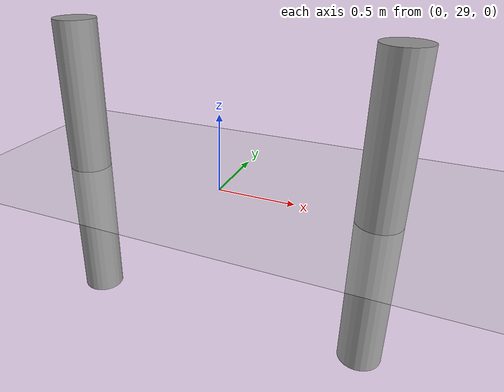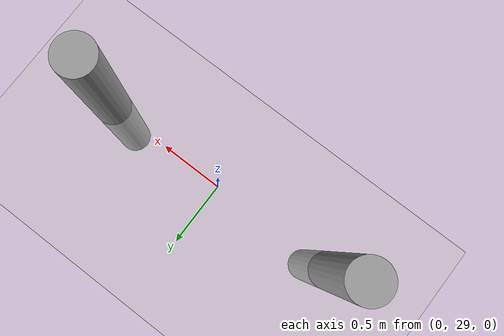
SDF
<sdf version="1.6">
 <world name="default">
  <model name="ground_plane">
   <static>1</static>
   <link name="link">
    <collision name="collision">
     <geometry><plane><normal>0 0 1</normal><size>100 100</size></plane></geometry>
     <surface><friction><ode><mu>100</mu><mu2>50</mu2></ode></friction></surface>
    </collision>
    <visual name="visual">
     <cast_shadows>0</cast_shadows>
     <geometry><plane><normal>0 0 1</normal><size>100 100</size></plane></geometry>
     <material>
      <script><uri>file://media/materials/scripts/gazebo.material</uri><name>Gazebo/Grey</name></script>
     </material>
    </visual>
   </link>
  </model>
  <model name="my_cylinder014_clone_40_0">
   <pose>1 29 0 0 -0 0</pose>
   <link name="my_cylinder014::link">
    <inertial>
     <mass>1</mass>
     <inertia><ixx>0.145833</ixx><ixy>0</ixy><ixz>0</ixz><iyy>0.145833</iyy><iyz>0</iyz><izz>0.125</izz></inertia>
    </inertial>
    <visual name="visual">
     <geometry><cylinder><radius>0.14</radius><length>2</length></cylinder></geometry>
     <material>
      <script><name>Gazebo/Grey</name><uri>file://media/materials/scripts/gazebo.material</uri></script>
      <ambient>0.3 0.3 0.3 1</ambient>
      <diffuse>0.7 0.7 0.7 1</diffuse>
      <specular>1 0.01 0.01 1</specular>
      <emissive>0 0 0 1</emissive>
      <shader type="vertex"><normal_map>__default__</normal_map></shader>
     </material>
    </visual>
    <collision name="collision">
     <geometry><cylinder><radius>0.14</radius><length>2</length></cylinder></geometry>
     <surface>
      <friction>
       <ode><mu>1</mu><mu2>1</mu2><fdir1>0 0 0</fdir1><slip1>0</slip1><slip2>0</slip2></ode>
       <torsional>
        <coefficient>1</coefficient>
        <patch_radius>0</patch_radius>
        <surface_radius>0</surface_radius>
        <use_patch_radius>1</use_patch_radius>
        <ode><slip>0</slip></ode>
       </torsional>
      </friction>
      <bounce><restitution_coefficient>0</restitution_coefficient><threshold>1e+06</threshold></bounce>
      <contact>
       <collide_without_contact>0</collide_without_contact>
       <collide_without_contact_bitmask>1</collide_without_contact_bitmask>
       <collide_bitmask>1</collide_bitmask>
       <ode>
        <soft_cfm>0</soft_cfm>
        <soft_erp>0.2</soft_erp>
        <kp>1e+13</kp>
        <kd>1</kd>
        <max_vel>0.01</max_vel>
        <min_depth>0</min_depth>
       </ode>
       <bullet>
        <split_impulse>1</split_impulse>
        <split_impulse_penetration_threshold>-0.01</split_impulse_penetration_threshold>
        <soft_cfm>0</soft_cfm>
        <soft_erp>0.2</soft_erp>
        <kp>1e+13</kp>
        <kd>1</kd>
       </bullet>
      </contact>
     </surface>
    </collision>
   </link>
   <static>1</static>
  </model>
  <model name="my_cylinder014_clone_40_0">
   <pose>1 29 0 0 -0 0</pose>
   <link name="my_cylinder014::link">
    <inertial>
     <mass>1</mass>
     <inertia><ixx>0.145833</ixx><ixy>0</ixy><ixz>0</ixz><iyy>0.145833</iyy><iyz>0</iyz><izz>0.125</izz></inertia>
    </inertial>
    <visual name="visual">
     <geometry><cylinder><radius>0.14</radius><length>2</length></cylinder></geometry>
     <material>
      <script><name>Gazebo/Grey</name><uri>file://media/materials/scripts/gazebo.material</uri></script>
      <ambient>0.3 0.3 0.3 1</ambient>
      <diffuse>0.7 0.7 0.7 1</diffuse>
      <specular>1 0.01 0.01 1</specular>
      <emissive>0 0 0 1</emissive>
      <shader type="vertex"><normal_map>__default__</normal_map></shader>
     </material>
    </visual>
    <collision name="collision">
     <geometry><cylinder><radius>0.14</radius><length>2</length></cylinder></geometry>
     <surface>
      <friction>
       <ode><mu>1</mu><mu2>1</mu2><fdir1>0 0 0</fdir1><slip1>0</slip1><slip2>0</slip2></ode>
       <torsional>
        <coefficient>1</coefficient>
        <patch_radius>0</patch_radius>
        <surface_radius>0</surface_radius>
        <use_patch_radius>1</use_patch_radius>
        <ode><slip>0</slip></ode>
       </torsional>
      </friction>
      <bounce><restitution_coefficient>0</restitution_coefficient><threshold>1e+06</threshold></bounce>
      <contact>
       <collide_without_contact>0</collide_without_contact>
       <collide_without_contact_bitmask>1</collide_without_contact_bitmask>
       <collide_bitmask>1</collide_bitmask>
       <ode>
        <soft_cfm>0</soft_cfm>
        <soft_erp>0.2</soft_erp>
        <kp>1e+13</kp>
        <kd>1</kd>
        <max_vel>0.01</max_vel>
        <min_depth>0</min_depth>
       </ode>
       <bullet>
        <split_impulse>1</split_impulse>
        <split_impulse_penetration_threshold>-0.01</split_impulse_penetration_threshold>
        <soft_cfm>0</soft_cfm>
        <soft_erp>0.2</soft_erp>
        <kp>1e+13</kp>
        <kd>1</kd>
       </bullet>
      </contact>
     </surface>
    </collision>
   </link>
   <static>1</static>
  </model>
  <model name="my_cylinder014_clone_39_1">
   <pose>-1 29 0 0 -0 0</pose>
   <link name="my_cylinder014::link">
    <inertial>
     <mass>1</mass>
     <inertia><ixx>0.145833</ixx><ixy>0</ixy><ixz>0</ixz><iyy>0.145833</iyy><iyz>0</iyz><izz>0.125</izz></inertia>
    </inertial>
    <visual name="visual">
     <geometry><cylinder><radius>0.14</radius><length>2</length></cylinder></geometry>
     <material>
      <script><name>Gazebo/Grey</name><uri>file://media/materials/scripts/gazebo.material</uri></script>
      <ambient>0.3 0.3 0.3 1</ambient>
      <diffuse>0.7 0.7 0.7 1</diffuse>
      <specular>1 0.01 0.01 1</specular>
      <emissive>0 0 0 1</emissive>
      <shader type="vertex"><normal_map>__default__</normal_map></shader>
     </material>
    </visual>
    <collision name="collision">
     <geometry><cylinder><radius>0.14</radius><length>2</length></cylinder></geometry>
     <surface>
      <friction>
       <ode><mu>1</mu><mu2>1</mu2><fdir1>0 0 0</fdir1><slip1>0</slip1><slip2>0</slip2></ode>
       <torsional>
        <coefficient>1</coefficient>
        <patch_radius>0</patch_radius>
        <surface_radius>0</surface_radius>
        <use_patch_radius>1</use_patch_radius>
        <ode><slip>0</slip></ode>
       </torsional>
      </friction>
      <bounce><restitution_coefficient>0</restitution_coefficient><threshold>1e+06</threshold></bounce>
      <contact>
       <collide_without_contact>0</collide_without_contact>
       <collide_without_contact_bitmask>1</collide_without_contact_bitmask>
       <collide_bitmask>1</collide_bitmask>
       <ode>
        <soft_cfm>0</soft_cfm>
        <soft_erp>0.2</soft_erp>
        <kp>1e+13</kp>
        <kd>1</kd>
        <max_vel>0.01</max_vel>
        <min_depth>0</min_depth>
       </ode>
       <bullet>
        <split_impulse>1</split_impulse>
        <split_impulse_penetration_threshold>-0.01</split_impulse_penetration_threshold>
        <soft_cfm>0</soft_cfm>
        <soft_erp>0.2</soft_erp>
        <kp>1e+13</kp>
        <kd>1</kd>
       </bullet>
      </contact>
     </surface>
    </collision>
   </link>
   <static>1</static>
  </model>
 </world>
</sdf>
